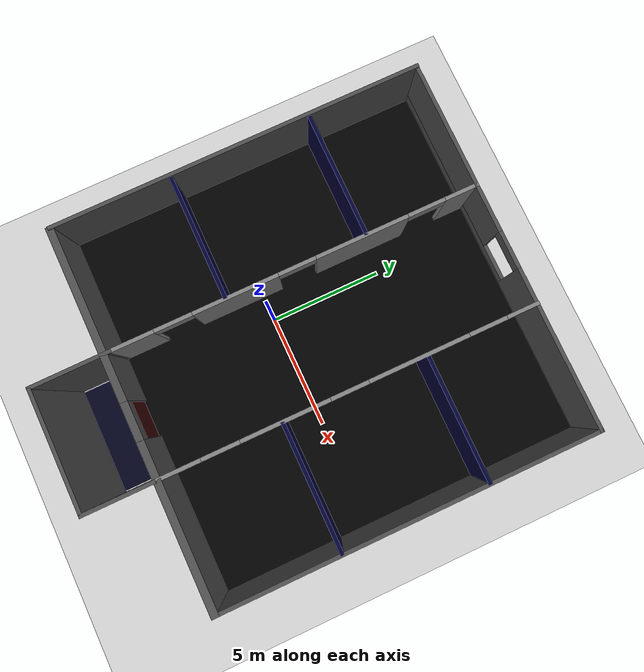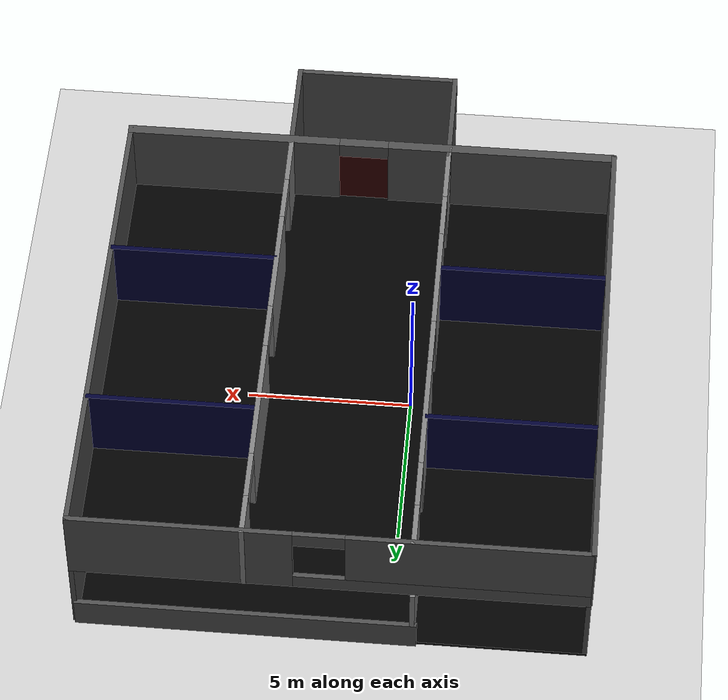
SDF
<sdf version="1.9">
 <world name="default">
  <physics type="ode">
   <max_step_size>0.004</max_step_size>
   <real_time_factor>1.0</real_time_factor>
   <real_time_update_rate>250</real_time_update_rate>
  </physics>
  <gravity>0 0 -9.8</gravity>
  <magnetic_field>6e-06 2.3e-05 -4.2e-05</magnetic_field>
  <atmosphere type="adiabatic"/>
  <scene>
   <grid>false</grid>
   <ambient>0.4 0.4 0.4 1</ambient>
   <background>0.7 0.7 0.7 1</background>
   <shadows>true</shadows>
  </scene>
  <model name="ground_plane">
   <static>true</static>
   <link name="link">
    <collision name="collision">
     <geometry><plane><normal>0 0 1</normal><size>1 1</size></plane></geometry>
    </collision>
    <visual name="visual">
     <geometry><plane><normal>0 0 1</normal><size>500 500</size></plane></geometry>
     <material>
      <ambient>0.8 0.8 0.8 1</ambient>
      <diffuse>0.8 0.8 0.8 1</diffuse>
      <specular>0.8 0.8 0.8 1</specular>
     </material>
    </visual>
    <inertial>
     <mass>1</mass>
     <inertia><ixx>1</ixx><ixy>0</ixy><ixz>0</ixz><iyy>1</iyy><iyz>0</iyz><izz>1</izz></inertia>
    </inertial>
   </link>
  </model>
  <light name="sunUTC" type="directional">
   <pose>0 0 500 0 -0 0</pose>
   <intensity>1</intensity>
   <direction>0.001 0.625 -0.78</direction>
   <diffuse>0.904 0.904 0.904 1</diffuse>
   <specular>0.271 0.271 0.271 1</specular>
   <attenuation><range>2000</range><linear>0</linear><constant>1</constant><quadratic>0</quadratic></attenuation>
   <spot><inner_angle>0</inner_angle><outer_angle>0</outer_angle><falloff>0</falloff></spot>
  </light>
  <spherical_coordinates>
   <surface_model>EARTH_WGS84</surface_model>
   <world_frame_orientation>ENU</world_frame_orientation>
   <latitude_deg>47.397971057728974</latitude_deg>
   <longitude_deg>8.546163739800146</longitude_deg>
   <elevation>0</elevation>
  </spherical_coordinates>
  <include><uri>model://elevator</uri><pose degrees="true">0 0 0.195 0 0 90</pose></include>
 </world>
</sdf>

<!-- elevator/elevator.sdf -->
<sdf version='1.7'>
  <model name='elevator'>
    <pose>-0 0 0 0 0 0</pose>
    <link name='floor_0'>
      <pose>1.39606 -1.72045 0.05 0 -0 0</pose>
      <inertial>
        <mass>1000</mass>
        <inertia>
          <ixx>10974.166666666666</ixx>
          <ixy>0</ixy>
          <ixz>0</ixz>
          <iyy>10854.166666666666</iyy>
          <iyz>0</iyz>
          <izz>546.6666666666667</izz>
        </inertia>
        <pose>0 0 3.2 0 0 0</pose>
      </inertial>
      <light type="directional" name="light_0">
        <pose>0 0 2.4 0 0 0</pose>
        <cast_shadows>false</cast_shadows>
        <diffuse>1 1 1 1</diffuse>
        <specular>.2 .2 .2 1</specular>
        <intensity>10</intensity>
        <attenuation>
          <range>200</range>
          <linear>0.2</linear>
          <constant>0.05</constant>
          <quadratic>0.01</quadratic>
        </attenuation>
        <direction>0 0 -1</direction>
        <visualize>false</visualize>
      </light>
      <visual name='Floor_0_Visual_0'>
        <pose>0 0 0.0 0 -0 0</pose>
        <geometry>
          <box>
            <size>15.0 15.0 0.1</size>
          </box>
        </geometry>
        <material>
          <ambient>0 0 0 1</ambient>
          <diffuse>0 0 0 1</diffuse>
          <emissive>0 0 0 1</emissive>
        </material>
        <meta>
          <layer>1</layer>
        </meta>
      </visual>

      <collision name='Floor_0_Collision_0'>
        <geometry>
          <box>
            <size>13.4446 15.0518 0.1</size>
          </box>
        </geometry>
        <pose>-0.79084 0 0.0 0 -0 0</pose>
      </collision>
      <collision name='Wall_1_0_Collision_0'>
        <geometry>
          <box>
            <size>10.5 0.15 2.5</size>
          </box>
        </geometry>
        <pose>-2.20 7.45391 1.25 0 -0 0</pose>
      </collision>
      <visual name='Wall_1_0_Visual_0'>
        <pose>-2.20 7.45391 1.25 0 -0 0</pose>
        <geometry>
          <box>
            <size>10.5 0.15 2.5</size>
          </box>
        </geometry>
        <material>
          <ambient>0.3 0.3 0.3 1</ambient>
          <diffuse>0.3 0.3 0.3 1</diffuse>
          <emissive>0.3 0.3 0.3 1</emissive>
        </material>
      </visual>
      <visual name='Wall_1_1_Visual_0'>
        <pose>0.0 7.45391 3.75 0 -0 0</pose>
        <geometry>
          <box>
            <size>15 0.15 2.5</size>
          </box>
        </geometry>
        <material>
          <ambient>0.3 0.3 0.3 1</ambient>
          <diffuse>0.3 0.3 0.3 1</diffuse>
          <emissive>0.3 0.3 0.3 1</emissive>
        </material>
      </visual>
      <collision name='Wall_1_1_Collision_0'>
        <geometry>
          <box>
            <size>15 0.15 2.5</size>
          </box>
        </geometry>
        <pose>0.0 7.45391 3.75 0 -0 0</pose>
      </collision>
    </link>

    <link name='floor_1'>
      <pose>1.39606 -1.72045 2.5 0 -0 0</pose>
      <inertial>
        <mass>1000</mass>
        <inertia>
          <ixx>10974.166666666666</ixx>
          <ixy>0</ixy>
          <ixz>0</ixz>
          <iyy>10854.166666666666</iyy>
          <iyz>0</iyz>
          <izz>546.6666666666667</izz>
        </inertia>
        <pose>0 0 3.2 0 0 0</pose>
      </inertial>
      <visual name='floor_1_Visual_0'>
        <pose>0 0 0.05 0 -0 0</pose>
        <geometry>
          <box>
            <size>15.0 15.0 0.1</size>
          </box>
        </geometry>
        <material>
          <ambient>0 0 0 1</ambient>
          <diffuse>0 0 0 1</diffuse>
          <emissive>0 0 0 1</emissive>
        </material>
        <meta>
          <layer>1</layer>
        </meta>
      </visual>
      <collision name='floor_1_Collision_0'>
        <geometry>
          <box>
            <size>13.4446 15.0518 0.1</size>
          </box>
        </geometry>
        <pose>-0.79084 0 0.05 0 -0 0</pose>
      </collision>
    </link>

    <link name='Wall_10'>
      <collision name='Wall_10_Collision'>
        <geometry>
          <box>
            <size>5 0.15 2.5</size>
          </box>
        </geometry>
        <pose>0 0 1.25 0 -0 0</pose>
      </collision>
      <visual name='Wall_10_Visual'>
        <pose>0 0 1.25 0 -0 0</pose>
        <geometry>
          <box>
            <size>5 0.15 2.5</size>
          </box>
        </geometry>
        <material>
          <ambient>0 0 0.2 1</ambient>
          <diffuse>0 0 0.2 1</diffuse>
          <emissive>0 0 0.2 1</emissive>
        </material>
        <meta>
          <layer>0</layer>
        </meta>
      </visual>
      <pose>-1.27212 3.17904 0 0 -0 -1.5708</pose>
    </link>
    <link name='Wall_14'>
      <collision name='Wall_14_Collision'>
        <geometry>
          <box>
            <size>5 0.15 2.5</size>
          </box>
        </geometry>
        <pose>0 0 1.25 0 -0 0</pose>
      </collision>
      <visual name='Wall_14_Visual'>
        <pose>0 0 1.25 0 -0 0</pose>
        <geometry>
          <box>
            <size>5 0.15 2.5</size>
          </box>
        </geometry>
        <material>
          <ambient>0 0 0.2 1</ambient>
          <diffuse>0 0 0.2 1</diffuse>
          <emissive>0 0 0.2 1</emissive>
        </material>
        <meta>
          <layer>0</layer>
        </meta>
      </visual>
      <pose>4.30707 3.16374 0 0 -0 -1.5708</pose>
    </link>
    <link name='Wall_16'>
      <collision name='Wall_16_Collision'>
        <geometry>
          <box>
            <size>5 0.15 2.5</size>
          </box>
        </geometry>
        <pose>0 0 1.25 0 -0 0</pose>
      </collision>
      <visual name='Wall_16_Visual'>
        <pose>0 0 1.25 0 -0 0</pose>
        <geometry>
          <box>
            <size>5 0.15 2.5</size>
          </box>
        </geometry>
        <material>
          <ambient>0 0 0.2 1</ambient>
          <diffuse>0 0 0.2 1</diffuse>
          <emissive>0 0 0.2 1</emissive>
        </material>
        <meta>
          <layer>0</layer>
        </meta>
      </visual>
      <pose>-1.23755 -6.6836 0 0 -0 -1.5708</pose>
    </link>
    <link name='Wall_18'>
      <pose>-0.84112 -4.18231 0 0 -0 0</pose>
      <visual name='Wall_18_Visual_0'>
        <pose>-4.7461 0 1.25 0 -0 0</pose>
        <geometry>
          <box>
            <size>1.00781 0.15 2.5</size>
          </box>
        </geometry>
        <material>
          <ambient>0.5 0.5 0.5 1</ambient>
          <diffuse>0.5 0.5 0.5 1</diffuse>
          <emissive>0.5 0.5 0.5 1</emissive>
        </material>
        <meta>
          <layer>0</layer>
        </meta>
      </visual>
      <collision name='Wall_18_Collision_0'>
        <geometry>
          <box>
            <size>1.00781 0.15 2.5</size>
          </box>
        </geometry>
        <pose>-4.7461 0 1.25 0 -0 0</pose>
      </collision>
      <visual name='Wall_18_Visual_1'>
        <pose>-0.660736 0 1.25 0 -0 0</pose>
        <geometry>
          <box>
            <size>4.16291 0.15 2.5</size>
          </box>
        </geometry>
        <material>
          <ambient>0.5 0.5 0.5 1</ambient>
          <diffuse>0.5 0.5 0.5 1</diffuse>
          <emissive>0.5 0.5 0.5 1</emissive>
        </material>
        <meta>
          <layer>0</layer>
        </meta>
      </visual>
      <collision name='Wall_18_Collision_1'>
        <geometry>
          <box>
            <size>4.16291 0.15 2.5</size>
          </box>
        </geometry>
        <pose>-0.660736 0 1.25 0 -0 0</pose>
      </collision>
      <visual name='Wall_18_Visual_2'>
        <pose>4.08536 0 1.25 0 -0 0</pose>
        <geometry>
          <box>
            <size>2.32928 0.15 2.5</size>
          </box>
        </geometry>
        <material>
          <ambient>0.5 0.5 0.5 1</ambient>
          <diffuse>0.5 0.5 0.5 1</diffuse>
          <emissive>0.5 0.5 0.5 1</emissive>
        </material>
        <meta>
          <layer>0</layer>
        </meta>
      </visual>
      <collision name='Wall_18_Collision_2'>
        <geometry>
          <box>
            <size>2.32928 0.15 2.5</size>
          </box>
        </geometry>
        <pose>4.08536 0 1.25 0 -0 0</pose>
      </collision>
      <visual name='Wall_18_Visual_3'>
        <pose>-3.49219 0 2.25 0 -0 0</pose>
        <geometry>
          <box>
            <size>1.5 0.15 0.5</size>
          </box>
        </geometry>
        <material>
          <ambient>0.5 0.5 0.5 1</ambient>
          <diffuse>0.5 0.5 0.5 1</diffuse>
          <emissive>0.5 0.5 0.5 1</emissive>
        </material>
        <meta>
          <layer>0</layer>
        </meta>
      </visual>
      <collision name='Wall_18_Collision_3'>
        <geometry>
          <box>
            <size>1.5 0.15 0.5</size>
          </box>
        </geometry>
        <pose>-3.49219 0 2.25 0 -0 0</pose>
      </collision>
      <visual name='Wall_18_Visual_4'>
        <pose>2.17072 0 2.25 0 -0 0</pose>
        <geometry>
          <box>
            <size>1.5 0.15 0.5</size>
          </box>
        </geometry>
        <material>
          <ambient>0.5 0.5 0.5 1</ambient>
          <diffuse>0.5 0.5 0.5 1</diffuse>
          <emissive>0.5 0.5 0.5 1</emissive>
        </material>
        <meta>
          <layer>0</layer>
        </meta>
      </visual>
      <collision name='Wall_18_Collision_4'>
        <geometry>
          <box>
            <size>1.5 0.15 0.5</size>
          </box>
        </geometry>
        <pose>2.17072 0 2.25 0 -0 0</pose>
      </collision>
    </link>

    <link name='Wall_23'>
      <collision name='Wall_23_Collision'>
        <geometry>
          <box>
            <size>5 0.15 2.5</size>
          </box>
        </geometry>
        <pose>0 0 1.25 0 -0 0</pose>
      </collision>
      <visual name='Wall_23_Visual'>
        <pose>0 0 1.25 0 -0 0</pose>
        <geometry>
          <box>
            <size>5 0.15 2.5</size>
          </box>
        </geometry>
        <material>
          <ambient>0 0 0.2 1</ambient>
          <diffuse>0 0 0.2 1</diffuse>
          <emissive>0 0 0.2 1</emissive>
        </material>
        <meta>
          <layer>0</layer>
        </meta>
      </visual>
      <pose>4.45931 -6.58722 0 0 -0 -1.5708</pose>
    </link>
    <link name='Wall_25'>
      <collision name='Wall_25_Collision'>
        <geometry>
          <box>
            <size>3.25102 0.15 5</size>
          </box>
        </geometry>
        <pose>0 0 2.5 0 -0 0</pose>
      </collision>
      <visual name='Wall_25_Visual'>
        <pose>0 0 2.5 0 -0 0</pose>
        <geometry>
          <box>
            <size>3.25102 0.15 5</size>
          </box>
        </geometry>
        <material>
          <diffuse>0.3 0.3 0.3 1</diffuse>
          <emissive>0.3 0.3 0.3 1</emissive>
          <ambient>0.3 0.3 0.3 1</ambient>
        </material>
        <meta>
          <layer>0</layer>
        </meta>
      </visual>
      <pose>-7.35633 0.666906 0 0 -0 -3.13837</pose>
    </link>
    <link name='Wall_26'>
      <collision name='Wall_26_Collision'>
        <geometry>
          <box>
            <size>5 0.15 5</size>
          </box>
        </geometry>
        <pose>0 0 2.5 0 -0 0</pose>
      </collision>
      <visual name='Wall_26_Visual'>
        <pose>0 0 2.5 0 -0 0</pose>
        <geometry>
          <box>
            <size>5 0.15 5</size>
          </box>
        </geometry>
        <material>
          <diffuse>0.3 0.3 0.3 1</diffuse>
          <emissive>0.3 0.3 0.3 1</emissive>
          <ambient>0.3 0.3 0.3 1</ambient>
        </material>
        <meta>
          <layer>0</layer>
        </meta>
      </visual>
      <pose>-8.90683 -1.76309 0 0 -0 -1.5708</pose>
    </link>
    <link name='Wall_27'>
      <collision name='Wall_27_Collision'>
        <geometry>
          <box>
            <size>3 0.15 5</size>
          </box>
        </geometry>
        <pose>0 0 2.5 0 -0 0</pose>
      </collision>
      <visual name='Wall_27_Visual'>
        <pose>0 0 2.5 0 -0 0</pose>
        <geometry>
          <box>
            <size>3 0.15 5</size>
          </box>
        </geometry>
        <material>
          <diffuse>0.3 0.3 0.3 1</diffuse>
          <emissive>0.3 0.3 0.3 1</emissive>
          <ambient>0.3 0.3 0.3 1</ambient>
        </material>
        <meta>
          <layer>0</layer>
        </meta>
      </visual>
      <pose>-7.48183 -4.18809 0 0 -0 0</pose>
    </link>
    <link name='Wall_4'>
      <pose>-6.04183 -1.72609 0 0 -0 -1.57</pose>
      <visual name='Wall_4_Visual_0'>
        <pose>-3.99915 0 1.25 0 -0 0</pose>
        <geometry>
          <box>
            <size>7.00169 0.3 2.5</size>
          </box>
        </geometry>
        <material>
          <ambient>0.3 0.3 0.3 1</ambient>
          <diffuse>0.3 0.3 0.3 1</diffuse>
          <emissive>0.3 0.3 0.3 1</emissive>
        </material>
        <meta>
          <layer>0</layer>
        </meta>
      </visual>
      <collision name='Wall_4_Collision_0'>
        <geometry>
          <box>
            <size>7.00169 0.3 2.5</size>
          </box>
        </geometry>
        <pose>-3.99915 0 1.3 0 -0 0</pose>
      </collision>
      <visual name='Wall_4_Visual_1'>
        <pose>4.25085 0 1.3 0 -0 0</pose>
        <geometry>
          <box>
            <size>6.49831 0.3 2.5</size>
          </box>
        </geometry>
        <material>
          <ambient>0.3 0.3 0.3 1</ambient>
          <diffuse>0.3 0.3 0.3 1</diffuse>
          <emissive>0.3 0.3 0.3 1</emissive>
        </material>
        <meta>
          <layer>0</layer>
        </meta>
      </visual>
      <collision name='Wall_4_Collision_1'>
        <geometry>
          <box>
            <size>6.49831 0.3 2.5</size>
          </box>
        </geometry>
        <pose>4.25085 0 1.25 0 -0 0</pose>
      </collision>
      <visual name='Wall_4_Visual_2'>
        <pose>0.251694 0 2.25 0 -0 0</pose>
        <geometry>
          <box>
            <size>1.5 0.3 0.5</size>
          </box>
        </geometry>
        <material>
          <ambient>0.3 0.3 0.3 1</ambient>
          <diffuse>0.3 0.3 0.3 1</diffuse>
          <emissive>0.3 0.3 0.3 1</emissive>
        </material>
        <meta>
          <layer>0</layer>
        </meta>
      </visual>
      <collision name='Wall_4_Collision_2'>
        <geometry>
          <box>
            <size>1.5 0.3 0.5</size>
          </box>
        </geometry>
        <pose>0.251694 0 2.25 0 -0 0</pose>
      </collision>
    </link>

    <link name='Wall_44'>
      <pose>-6.04183 -1.72609 2.5 0 -0 -1.57</pose>
      <visual name='Wall_44_Visual_0'>
        <pose>-4.02502 0 1.25 0 -0 0</pose>
        <geometry>
          <box>
            <size>7.00134 0.3 2.5</size>
          </box>
        </geometry>
        <material>
          <ambient>0.3 0.3 0.3 1</ambient>
          <diffuse>0.3 0.3 0.3 1</diffuse>
          <emissive>0.3 0.3 0.3 1</emissive>
        </material>
        <meta>
          <layer>1</layer>
        </meta>
      </visual>
      <collision name='Wall_44_Collision_0'>
        <geometry>
          <box>
            <size>7.00134 0.3 2.5</size>
          </box>
        </geometry>
        <pose>-4.02502 0 1.25 0 -0 0</pose>
      </collision>
      <visual name='Wall_44_Visual_1'>
        <pose>4.25085 0 1.25 0 -0 0</pose>
        <geometry>
          <box>
            <size>6.55004 0.3 2.5</size>
          </box>
        </geometry>
        <material>
          <ambient>0.3 0.3 0.3 1</ambient>
          <diffuse>0.3 0.3 0.3 1</diffuse>
          <emissive>0.3 0.3 0.3 1</emissive>
        </material>
        <meta>
          <layer>1</layer>
        </meta>
      </visual>
      <collision name='Wall_44_Collision_1'>
        <geometry>
          <box>
            <size>6.55004 0.3 2.5</size>
          </box>
        </geometry>
        <pose>4.25067 0 1.25 0 -0 0</pose>
      </collision>
      <visual name='Wall_44_Visual_2'>
        <pose>0.225654 0 2.25 0 -0 0</pose>
        <geometry>
          <box>
            <size>1.5 0.3 0.5</size>
          </box>
        </geometry>
        <material>
          <ambient>0.3 0.3 0.3 1</ambient>
          <diffuse>0.3 0.3 0.3 1</diffuse>
          <emissive>0.3 0.3 0.3 1</emissive>
        </material>
        <meta>
          <layer>1</layer>
        </meta>
      </visual>
      <collision name='Wall_44_Collision_2'>
        <geometry>
          <box>
            <size>1.5 0.3 0.5</size>
          </box>
        </geometry>
        <pose>0.225654 0 2.25 0 -0 0</pose>
      </collision>
    </link>
    <link name='Wall_45'>
      <collision name='Wall_45_Collision'>
        <geometry>
          <box>
            <size>15.015 0.15 2.5</size>
          </box>
        </geometry>
        <pose>0 0 1.25 0 -0 0</pose>
      </collision>
      <visual name='Wall_45_Visual'>
        <pose>0 0 1.25 0 -0 0</pose>
        <geometry>
          <box>
            <size>15.015 0.15 2.5</size>
          </box>
        </geometry>
        <material>
          <ambient>0.3 0.3 0.3 1</ambient>
          <diffuse>0.3 0.3 0.3 1</diffuse>
          <emissive>0.3 0.3 0.3 1</emissive>
        </material>
        <meta>
          <layer>1</layer>
        </meta>
      </visual>
      <pose>1.39067 -9.17109 2.5 0 -0 0</pose>
    </link>
    <link name='Wall_46'>
      <pose>1.39488 0.671906 2.5 0 -0 0</pose>
      <visual name='Wall_46_Visual_0'>
        <pose>-6.49103 0 1.25 0 -0 0</pose>
        <geometry>
          <box>
            <size>2.01794 0.15 2.5</size>
          </box>
        </geometry>
        <material>
          <ambient>0.5 0.5 0.5 1</ambient>
          <diffuse>0.5 0.5 0.5 1</diffuse>
          <emissive>0.5 0.5 0.5 1</emissive>
        </material>
        <meta>
          <layer>1</layer>
        </meta>
      </visual>
      <collision name='Wall_46_Collision_0'>
        <geometry>
          <box>
            <size>2.01794 0.15 2.5</size>
          </box>
        </geometry>
        <pose>-6.49103 0 1.25 0 -0 0</pose>
      </collision>
      <visual name='Wall_46_Visual_1'>
        <pose>-2.28116 0 1.25 0 -0 0</pose>
        <geometry>
          <box>
            <size>3.4018 0.15 2.5</size>
          </box>
        </geometry>
        <material>
          <ambient>0.5 0.5 0.5 1</ambient>
          <diffuse>0.5 0.5 0.5 1</diffuse>
          <emissive>0.5 0.5 0.5 1</emissive>
        </material>
        <meta>
          <layer>1</layer>
        </meta>
      </visual>
      <collision name='Wall_46_Collision_1'>
        <geometry>
          <box>
            <size>3.4018 0.15 2.5</size>
          </box>
        </geometry>
        <pose>-2.28116 0 1.25 0 -0 0</pose>
      </collision>
      <visual name='Wall_46_Visual_2'>
        <pose>2.77923 0 1.25 0 -0 0</pose>
        <geometry>
          <box>
            <size>3.71898 0.15 2.5</size>
          </box>
        </geometry>
        <material>
          <ambient>0.5 0.5 0.5 1</ambient>
          <diffuse>0.5 0.5 0.5 1</diffuse>
          <emissive>0.5 0.5 0.5 1</emissive>
        </material>
        <meta>
          <layer>1</layer>
        </meta>
      </visual>
      <collision name='Wall_46_Collision_2'>
        <geometry>
          <box>
            <size>3.71898 0.15 2.5</size>
          </box>
        </geometry>
        <pose>2.77923 0 1.25 0 -0 0</pose>
      </collision>
      <visual name='Wall_46_Visual_3'>
        <pose>6.81936 0 1.25 0 -0 0</pose>
        <geometry>
          <box>
            <size>1.36129 0.15 2.5</size>
          </box>
        </geometry>
        <material>
          <ambient>0.5 0.5 0.5 1</ambient>
          <diffuse>0.5 0.5 0.5 1</diffuse>
          <emissive>0.5 0.5 0.5 1</emissive>
        </material>
        <meta>
          <layer>1</layer>
        </meta>
      </visual>
      <collision name='Wall_46_Collision_3'>
        <geometry>
          <box>
            <size>1.36129 0.15 2.5</size>
          </box>
        </geometry>
        <pose>6.81936 0 1.25 0 -0 0</pose>
      </collision>
      <visual name='Wall_46_Visual_4'>
        <pose>-4.73206 0 2.25 0 -0 0</pose>
        <geometry>
          <box>
            <size>1.5 0.15 0.5</size>
          </box>
        </geometry>
        <material>
          <ambient>0.5 0.5 0.5 1</ambient>
          <diffuse>0.5 0.5 0.5 1</diffuse>
          <emissive>0.5 0.5 0.5 1</emissive>
        </material>
        <meta>
          <layer>1</layer>
        </meta>
      </visual>
      <collision name='Wall_46_Collision_4'>
        <geometry>
          <box>
            <size>1.5 0.15 0.5</size>
          </box>
        </geometry>
        <pose>-4.73206 0 2.25 0 -0 0</pose>
      </collision>
      <visual name='Wall_46_Visual_5'>
        <pose>0.169738 0 2.25 0 -0 0</pose>
        <geometry>
          <box>
            <size>1.5 0.15 0.5</size>
          </box>
        </geometry>
        <material>
          <ambient>0.5 0.5 0.5 1</ambient>
          <diffuse>0.5 0.5 0.5 1</diffuse>
          <emissive>0.5 0.5 0.5 1</emissive>
        </material>
        <meta>
          <layer>1</layer>
        </meta>
      </visual>
      <collision name='Wall_46_Collision_5'>
        <geometry>
          <box>
            <size>1.5 0.15 0.5</size>
          </box>
        </geometry>
        <pose>0.169738 0 2.25 0 -0 0</pose>
      </collision>
      <visual name='Wall_46_Visual_6'>
        <pose>5.38872 0 2.25 0 -0 0</pose>
        <geometry>
          <box>
            <size>1.5 0.15 0.5</size>
          </box>
        </geometry>
        <material>
          <ambient>0.5 0.5 0.5 1</ambient>
          <diffuse>0.5 0.5 0.5 1</diffuse>
          <emissive>0.5 0.5 0.5 1</emissive>
        </material>
        <meta>
          <layer>1</layer>
        </meta>
      </visual>
      <collision name='Wall_46_Collision_6'>
        <geometry>
          <box>
            <size>1.5 0.15 0.5</size>
          </box>
        </geometry>
        <pose>5.38872 0 2.25 0 -0 0</pose>
      </collision>
    </link>
    <link name='Wall_47'>
      <collision name='Wall_47_Collision'>
        <geometry>
          <box>
            <size>5 0.15 2.5</size>
          </box>
        </geometry>
        <pose>0 0 1.25 0 -0 0</pose>
      </collision>
      <visual name='Wall_47_Visual'>
        <pose>0 0 1.25 0 -0 0</pose>
        <geometry>
          <box>
            <size>5 0.15 2.5</size>
          </box>
        </geometry>
        <material>
          <ambient>0 0 0.2 1</ambient>
          <diffuse>0 0 0.2 1</diffuse>
          <emissive>0 0 0.2 1</emissive>
        </material>
        <meta>
          <layer>1</layer>
        </meta>
      </visual>
      <pose>-1.27212 3.17904 2.5 0 -0 -1.5708</pose>
    </link>
    <link name='Wall_49'>
      <collision name='Wall_49_Collision'>
        <geometry>
          <box>
            <size>5 0.15 2.5</size>
          </box>
        </geometry>
        <pose>0 0 1.25 0 -0 0</pose>
      </collision>
      <visual name='Wall_49_Visual'>
        <pose>0 0 1.25 0 -0 0</pose>
        <geometry>
          <box>
            <size>5 0.15 2.5</size>
          </box>
        </geometry>
        <material>
          <ambient>0 0 0.2 1</ambient>
          <diffuse>0 0 0.2 1</diffuse>
          <emissive>0 0 0.2 1</emissive>
        </material>
        <meta>
          <layer>1</layer>
        </meta>
      </visual>
      <pose>4.34511 3.17008 2.5 0 -0 -1.5708</pose>
    </link>
    <link name='Wall_50'>
      <collision name='Wall_50_Collision'>
        <geometry>
          <box>
            <size>5 0.15 2.5</size>
          </box>
        </geometry>
        <pose>0 0 1.25 0 -0 0</pose>
      </collision>
      <visual name='Wall_50_Visual'>
        <pose>0 0 1.25 0 -0 0</pose>
        <geometry>
          <box>
            <size>5 0.15 2.5</size>
          </box>
        </geometry>
        <material>
          <ambient>0 0 0.2 1</ambient>
          <diffuse>0 0 0.2 1</diffuse>
          <emissive>0 0 0.2 1</emissive>
        </material>
        <meta>
          <layer>1</layer>
        </meta>
      </visual>
      <pose>-1.23755 -6.6836 2.5 0 -0 -1.5708</pose>
    </link>
    <link name='Wall_51'>
      <pose>1.40917 -4.18659 2.5 0 -0 -0.000606</pose>
      <visual name='Wall_51_Visual_0'>
        <pose>-6.64233 0 1.25 0 -0 0</pose>
        <geometry>
          <box>
            <size>1.71534 0.15 2.5</size>
          </box>
        </geometry>
        <material>
          <ambient>0.5 0.5 0.5 1</ambient>
          <diffuse>0.5 0.5 0.5 1</diffuse>
          <emissive>0.5 0.5 0.5 1</emissive>
        </material>
        <meta>
          <layer>1</layer>
        </meta>
      </visual>
      <collision name='Wall_51_Collision_0'>
        <geometry>
          <box>
            <size>1.71534 0.15 2.5</size>
          </box>
        </geometry>
        <pose>-6.64233 0 1.25 0 -0 0</pose>
      </collision>
      <visual name='Wall_51_Visual_1'>
        <pose>-2.52611 0 1.25 0 -0 0</pose>
        <geometry>
          <box>
            <size>3.5171 0.15 2.5</size>
          </box>
        </geometry>
        <material>
          <ambient>0.5 0.5 0.5 1</ambient>
          <diffuse>0.5 0.5 0.5 1</diffuse>
          <emissive>0.5 0.5 0.5 1</emissive>
        </material>
        <meta>
          <layer>1</layer>
        </meta>
      </visual>
      <collision name='Wall_51_Collision_1'>
        <geometry>
          <box>
            <size>3.5171 0.15 2.5</size>
          </box>
        </geometry>
        <pose>-2.52611 0 1.25 0 -0 0</pose>
      </collision>
      <visual name='Wall_51_Visual_2'>
        <pose>2.72171 0 1.25 0 -0 0</pose>
        <geometry>
          <box>
            <size>3.97854 0.15 2.5</size>
          </box>
        </geometry>
        <material>
          <ambient>0.5 0.5 0.5 1</ambient>
          <diffuse>0.5 0.5 0.5 1</diffuse>
          <emissive>0.5 0.5 0.5 1</emissive>
        </material>
        <meta>
          <layer>1</layer>
        </meta>
      </visual>
      <collision name='Wall_51_Collision_2'>
        <geometry>
          <box>
            <size>3.97854 0.15 2.5</size>
          </box>
        </geometry>
        <pose>2.72171 0 1.25 0 -0 0</pose>
      </collision>
      <visual name='Wall_51_Visual_3'>
        <pose>6.85549 0 1.25 0 -0 0</pose>
        <geometry>
          <box>
            <size>1.28903 0.15 2.5</size>
          </box>
        </geometry>
        <material>
          <ambient>0.5 0.5 0.5 1</ambient>
          <diffuse>0.5 0.5 0.5 1</diffuse>
          <emissive>0.5 0.5 0.5 1</emissive>
        </material>
        <meta>
          <layer>1</layer>
        </meta>
      </visual>
      <collision name='Wall_51_Collision_3'>
        <geometry>
          <box>
            <size>1.28903 0.15 2.5</size>
          </box>
        </geometry>
        <pose>6.85549 0 1.25 0 -0 0</pose>
      </collision>
      <visual name='Wall_51_Visual_4'>
        <pose>-5.03466 0 2.25 0 -0 0</pose>
        <geometry>
          <box>
            <size>1.5 0.15 0.5</size>
          </box>
        </geometry>
        <material>
          <ambient>0.5 0.5 0.5 1</ambient>
          <diffuse>0.5 0.5 0.5 1</diffuse>
          <emissive>0.5 0.5 0.5 1</emissive>
        </material>
        <meta>
          <layer>1</layer>
        </meta>
      </visual>
      <collision name='Wall_51_Collision_4'>
        <geometry>
          <box>
            <size>1.5 0.15 0.5</size>
          </box>
        </geometry>
        <pose>-5.03466 0 2.25 0 -0 0</pose>
      </collision>
      <visual name='Wall_51_Visual_5'>
        <pose>-0.017562 0 2.25 0 -0 0</pose>
        <geometry>
          <box>
            <size>1.5 0.15 0.5</size>
          </box>
        </geometry>
        <material>
          <ambient>0.5 0.5 0.5 1</ambient>
          <diffuse>0.5 0.5 0.5 1</diffuse>
          <emissive>0.5 0.5 0.5 1</emissive>
        </material>
        <meta>
          <layer>1</layer>
        </meta>
      </visual>
      <collision name='Wall_51_Collision_5'>
        <geometry>
          <box>
            <size>1.5 0.15 0.5</size>
          </box>
        </geometry>
        <pose>-0.017562 0 2.25 0 -0 0</pose>
      </collision>
      <visual name='Wall_51_Visual_6'>
        <pose>5.46097 0 2.25 0 -0 0</pose>
        <geometry>
          <box>
            <size>1.5 0.15 0.5</size>
          </box>
        </geometry>
        <material>
          <ambient>0.5 0.5 0.5 1</ambient>
          <diffuse>0.5 0.5 0.5 1</diffuse>
          <emissive>0.5 0.5 0.5 1</emissive>
        </material>
        <meta>
          <layer>1</layer>
        </meta>
      </visual>
      <collision name='Wall_51_Collision_6'>
        <geometry>
          <box>
            <size>1.5 0.15 0.5</size>
          </box>
        </geometry>
        <pose>5.46097 0 2.25 0 -0 0</pose>
      </collision>
    </link>
    <link name='Wall_53'>
      <collision name='Wall_53_Collision'>
        <geometry>
          <box>
            <size>5 0.15 2.5</size>
          </box>
        </geometry>
        <pose>0 0 1.25 0 -0 0</pose>
      </collision>
      <visual name='Wall_53_Visual'>
        <pose>0 0 1.25 0 -0 0</pose>
        <geometry>
          <box>
            <size>5 0.15 2.5</size>
          </box>
        </geometry>
        <material>
          <ambient>0 0 0.2 1</ambient>
          <diffuse>0 0 0.2 1</diffuse>
          <emissive>0 0 0.2 1</emissive>
        </material>
        <meta>
          <layer>1</layer>
        </meta>
      </visual>
      <pose>4.44656 -6.68923 2.5 0 -0 -1.5708</pose>
    </link>

    <link name='Wall_6'>
      <collision name='Wall_6_Collision'>
        <geometry>
          <box>
            <size>15.0149 0.15 2.5</size>
          </box>
        </geometry>
        <pose>0 0 1.25 0 -0 0</pose>
      </collision>
      <visual name='Wall_6_Visual'>
        <pose>0 0 1.25 0 -0 0</pose>
        <geometry>
          <box>
            <size>15.0149 0.15 2.5</size>
          </box>
        </geometry>
        <material>
          <ambient>0.3 0.3 0.3 1</ambient>
          <diffuse>0.3 0.3 0.3 1</diffuse>
          <emissive>0.3 0.3 0.3 1</emissive>
        </material>
        <meta>
          <layer>0</layer>
        </meta>
      </visual>
      <pose>1.39067 -9.17109 0 0 -0 0</pose>
    </link>
    <link name='Wall_69'>
      <collision name='Wall_69_Collision'>
        <geometry>
          <box>
            <size>4.75 0.15 2.5</size>
          </box>
        </geometry>
        <pose>0 0 1.25 0 -0 0</pose>
      </collision>
      <visual name='Wall_69_Visual'>
        <pose>0 0 1.25 0 -0 0</pose>
        <geometry>
          <box>
            <size>4.75 0.15 2.5</size>
          </box>
        </geometry>
        <material>
          <ambient>0.5 0.5 0.5 1</ambient>
          <diffuse>0.5 0.5 0.5 1</diffuse>
          <emissive>0.5 0.5 0.5 1</emissive>
        </material>
        <meta>
          <layer>0</layer>
        </meta>
      </visual>
      <pose>6.60707 0.671906 0 0 -0 0</pose>
    </link>
    <link name='Wall_70'>
      <pose>8.90707 -4.18626 0 0 -0 -1.5708</pose>
      <visual name='Wall_70_Visual_0'>
        <pose>0 0 .5 0 -0 0</pose>
        <geometry>
          <box>
            <size>10 0.15 1</size>
          </box>
        </geometry>
        <material>
          <diffuse>0.3 0.3 0.3 1</diffuse>
          <emissive>0.3 0.3 0.3 1</emissive>
          <ambient>0.3 0.3 0.3 1</ambient>
        </material>
        <meta>
          <layer>0</layer>
        </meta>
      </visual>
      <collision name='Wall_70_Collision_0'>
        <geometry>
          <box>
            <size>10 0.15 1</size>
          </box>
        </geometry>
        <pose>-2.03566 0 .5 0 -0 0</pose>
      </collision>
    </link>
    <link name='Wall_72'>
      <pose>8.82317 -1.74609 2.5 0 -0 1.5708</pose>
      <visual name='Wall_72_Visual_0'>
        <pose>-4.25857 0 1.25 0 -0 0</pose>
        <geometry>
          <box>
            <size>6.48286 0.15 2.5</size>
          </box>
        </geometry>
        <material>
          <ambient>0.3 0.3 0.3 1</ambient>
          <diffuse>0.3 0.3 0.3 1</diffuse>
          <emissive>0.3 0.3 0.3 1</emissive>
        </material>
        <meta>
          <layer>1</layer>
        </meta>
      </visual>
      <collision name='Wall_72_Collision_0'>
        <geometry>
          <box>
            <size>6.48286 0.15 2.5</size>
          </box>
        </geometry>
        <pose>-4.25857 0 1.25 0 -0 0</pose>
      </collision>
      <visual name='Wall_72_Visual_1'>
        <pose>3.24143 0 0.25 0 -0 0</pose>
        <geometry>
          <box>
            <size>8.51714 0.15 0.5</size>
          </box>
        </geometry>
        <material>
          <ambient>0.3 0.3 0.3 1</ambient>
          <diffuse>0.3 0.3 0.3 1</diffuse>
          <emissive>0.3 0.3 0.3 1</emissive>
        </material>
        <meta>
          <layer>1</layer>
        </meta>
      </visual>
      <collision name='Wall_72_Collision_1'>
        <geometry>
          <box>
            <size>8.51714 0.15 0.5</size>
          </box>
        </geometry>
        <pose>3.24143 0 0.25 0 -0 0</pose>
      </collision>
      <visual name='Wall_72_Visual_2'>
        <pose>3.99143 0 1.5 0 -0 0</pose>
        <geometry>
          <box>
            <size>7.01714 0.15 2</size>
          </box>
        </geometry>
        <material>
          <ambient>0.3 0.3 0.3 1</ambient>
          <diffuse>0.3 0.3 0.3 1</diffuse>
          <emissive>0.3 0.3 0.3 1</emissive>
        </material>
        <meta>
          <layer>1</layer>
        </meta>
      </visual>
      <collision name='Wall_72_Collision_2'>
        <geometry>
          <box>
            <size>7.01714 0.15 2</size>
          </box>
        </geometry>
        <pose>3.99143 0 1.5 0 -0 0</pose>
      </collision>
      <visual name='Wall_72_Visual_3'>
        <pose>-0.267142 0 2.25 0 -0 0</pose>
        <geometry>
          <box>
            <size>1.5 0.15 0.5</size>
          </box>
        </geometry>
        <material>
          <ambient>0.3 0.3 0.3 1</ambient>
          <diffuse>0.3 0.3 0.3 1</diffuse>
          <emissive>0.3 0.3 0.3 1</emissive>
        </material>
        <meta>
          <layer>1</layer>
        </meta>
      </visual>
      <collision name='Wall_72_Collision_3'>
        <geometry>
          <box>
            <size>1.5 0.15 0.5</size>
          </box>
        </geometry>
        <pose>-0.267142 0 2.25 0 -0 0</pose>
      </collision>
    </link>

    <link name='Wall_77'>
      <collision name='Wall_77_Collision'>
        <geometry>
          <box>
            <size>0.25 0.15 2.5</size>
          </box>
        </geometry>
        <pose>0 0 1.25 0 -0 0</pose>
      </collision>
      <visual name='Wall_77_Visual'>
        <pose>0 0 1.25 0 -0 0</pose>
        <geometry>
          <box>
            <size>0.25 0.15 2.5</size>
          </box>
        </geometry>
        <material>
          <ambient>0.3 0.3 0.3 1</ambient>
          <diffuse>0.3 0.3 0.3 1</diffuse>
          <emissive>0.3 0.3 0.3 1</emissive>
        </material>
        <meta>
          <layer>0</layer>
        </meta>
      </visual>
      <pose>8.76434 5.71056 0 0 -0 0</pose>
    </link>
    <link name='Wall_8'>
      <pose>-0.755829 0.671906 0 0 -0 0</pose>
      <visual name='Wall_8_Visual_0'>
        <pose>-4.60506 0 1.25 0 -0 0</pose>
        <geometry>
          <box>
            <size>1.03988 0.15 2.5</size>
          </box>
        </geometry>
        <material>
          <ambient>0.5 0.5 0.5 1</ambient>
          <diffuse>0.5 0.5 0.5 1</diffuse>
          <emissive>0.5 0.5 0.5 1</emissive>
        </material>
        <meta>
          <layer>0</layer>
        </meta>
      </visual>
      <collision name='Wall_8_Collision_0'>
        <geometry>
          <box>
            <size>1.03988 0.15 2.5</size>
          </box>
        </geometry>
        <pose>-4.60506 0 1.25 0 -0 0</pose>
      </collision>
      <visual name='Wall_8_Visual_1'>
        <pose>-0.291668 0 1.25 0 -0 0</pose>
        <geometry>
          <box>
            <size>4.58691 0.15 2.5</size>
          </box>
        </geometry>
        <material>
          <ambient>0.5 0.5 0.5 1</ambient>
          <diffuse>0.5 0.5 0.5 1</diffuse>
          <emissive>0.5 0.5 0.5 1</emissive>
        </material>
        <meta>
          <layer>0</layer>
        </meta>
      </visual>
      <collision name='Wall_8_Collision_1'>
        <geometry>
          <box>
            <size>4.58691 0.15 2.5</size>
          </box>
        </geometry>
        <pose>-0.291668 0 1.25 0 -0 0</pose>
      </collision>
      <visual name='Wall_8_Visual_2'>
        <pose>4.31339 0 1.25 0 -0 0</pose>
        <geometry>
          <box>
            <size>1.62321 0.15 2.5</size>
          </box>
        </geometry>
        <material>
          <ambient>0.5 0.5 0.5 1</ambient>
          <diffuse>0.5 0.5 0.5 1</diffuse>
          <emissive>0.5 0.5 0.5 1</emissive>
        </material>
        <meta>
          <layer>0</layer>
        </meta>
      </visual>
      <collision name='Wall_8_Collision_2'>
        <geometry>
          <box>
            <size>1.62321 0.15 2.5</size>
          </box>
        </geometry>
        <pose>4.31339 0 1.25 0 -0 0</pose>
      </collision>
      <visual name='Wall_8_Visual_3'>
        <pose>-3.33513 0 2.25 0 -0 0</pose>
        <geometry>
          <box>
            <size>1.5 0.15 0.5</size>
          </box>
        </geometry>
        <material>
          <ambient>0.5 0.5 0.5 1</ambient>
          <diffuse>0.5 0.5 0.5 1</diffuse>
          <emissive>0.5 0.5 0.5 1</emissive>
        </material>
        <meta>
          <layer>0</layer>
        </meta>
      </visual>
      <collision name='Wall_8_Collision_3'>
        <geometry>
          <box>
            <size>1.5 0.15 0.5</size>
          </box>
        </geometry>
        <pose>-3.33513 0 2.25 0 -0 0</pose>
      </collision>
      <visual name='Wall_8_Visual_4'>
        <pose>2.75179 0 2.25 0 -0 0</pose>
        <geometry>
          <box>
            <size>1.5 0.15 0.5</size>
          </box>
        </geometry>
        <material>
          <ambient>0.5 0.5 0.5 1</ambient>
          <diffuse>0.5 0.5 0.5 1</diffuse>
          <emissive>0.5 0.5 0.5 1</emissive>
        </material>
        <meta>
          <layer>0</layer>
        </meta>
      </visual>
      <collision name='Wall_8_Collision_4'>
        <geometry>
          <box>
            <size>1.5 0.15 0.5</size>
          </box>
        </geometry>
        <pose>2.75179 0 2.25 0 -0 0</pose>
      </collision>
    </link>

    <joint name="foundation" type="fixed">
      <parent>world</parent>
      <child>floor_0</child>
    </joint>
    <joint name="floor_1_joint" type="fixed">
      <parent>floor_0</parent>
      <child>floor_1</child>
    </joint>
    <joint name="Wall_10joint" type="fixed">
      <parent>floor_0</parent>
      <child>Wall_10</child>
    </joint>
    <joint name="Wall_14_joint" type="fixed">
      <parent>floor_0</parent>
      <child>Wall_14</child>
    </joint>
    <joint name="Wall_16_joint" type="fixed">
      <parent>floor_0</parent>
      <child>Wall_16</child>
    </joint>
    <joint name="Wall_18_joint" type="fixed">
      <parent>floor_0</parent>
      <child>Wall_18</child>
    </joint>
    <joint name="Wall_23_joint" type="fixed">
      <parent>floor_0</parent>
      <child>Wall_23</child>
    </joint>
    <joint name="Wall_25_joint" type="fixed">
      <parent>floor_0</parent>
      <child>Wall_25</child>
    </joint>
    <joint name="Wall_26_joint" type="fixed">
      <parent>floor_0</parent>
      <child>Wall_26</child>
    </joint>
    <joint name="Wall_27_joint" type="fixed">
      <parent>floor_0</parent>
      <child>Wall_27</child>
    </joint>
    <joint name="Wall_4_joint" type="fixed">
      <parent>floor_0</parent>
      <child>Wall_4</child>
    </joint>
    <joint name="Wall_44_joint" type="fixed">
      <parent>floor_0</parent>
      <child>Wall_44</child>
    </joint>
    <joint name="Wall_46_joint" type="fixed">
      <parent>floor_0</parent>
      <child>Wall_46</child>
    </joint>
    <joint name="Wall_47_joint" type="fixed">
      <parent>floor_0</parent>
      <child>Wall_47</child>
    </joint>
    <joint name="Wall_49_joint" type="fixed">
      <parent>floor_0</parent>
      <child>Wall_49</child>
    </joint>
    <joint name="Wall_50_joint" type="fixed">
      <parent>floor_0</parent>
      <child>Wall_50</child>
    </joint>
    <joint name="Wall_51_joint" type="fixed">
      <parent>floor_0</parent>
      <child>Wall_51</child>
    </joint>
    <joint name="Wall_53_joint" type="fixed">
      <parent>floor_0</parent>
      <child>Wall_53</child>
    </joint>
    <joint name="Wall_6_joint" type="fixed">
      <parent>floor_0</parent>
      <child>Wall_6</child>
    </joint>
    <joint name="Wall_69_joint" type="fixed">
      <parent>floor_0</parent>
      <child>Wall_69</child>
    </joint>
    <joint name="Wall_72_joint" type="fixed">
      <parent>floor_0</parent>
      <child>Wall_72</child>
    </joint>
    <joint name="Wall_77_joint" type="fixed">
      <parent>floor_0</parent>
      <child>Wall_77</child>
    </joint>
    <joint name="Wall_8_joint" type="fixed">
      <parent>floor_0</parent>
      <child>Wall_8</child>
    </joint>
    <joint name="Wall_45_joint" type="fixed">
      <parent>floor_0</parent>
      <child>Wall_45</child>
    </joint>
    <joint name="Wall_70_joint" type="fixed">
      <parent>floor_0</parent>
      <child>Wall_70</child>
    </joint>

    <link name='door_panel_0'>
      <pose>-6.03203 -1.98752 1 0 -0 -1.5708</pose>
      <inertial>
        <mass>20</mass>
        <inertia>
          <ixx>9.933333333333334</ixx>
          <ixy>0</ixy>
          <ixz>0</ixz>
          <iyy>6.683333333333333</iyy>
          <iyz>0</iyz>
          <izz>3.2833333333333328</izz>
        </inertia>
        <pose>0 0 0 0 0 0</pose>
      </inertial>
      <collision name='door_panel_0_Collision'>
        <geometry>
          <box>
            <size>0.15 0.15 2</size>
          </box>
        </geometry>
      </collision>
      <visual name='door_panel_0_Visual'>
        <geometry>
          <box>
            <size>1.5 0.15 2</size>
          </box>
        </geometry>
        <material>
          <ambient>0.2 0 0 1</ambient>
          <diffuse>0.2 0 0 1</diffuse>
          <emissive>0.2 0 0  1</emissive>
        </material>
      </visual>
    </link>

    <joint name="door_0" type="prismatic">
      <parent>floor_0</parent>
      <child>door_panel_0</child>
      <axis>
        <xyz>-1 0 0</xyz>
        <limit>
          <lower>0</lower>
          <upper>1.5</upper>
          <effort>5000</effort>
          <velocity>0.1</velocity>
        </limit>
        <dynamics>
          <damping>30</damping>
        </dynamics>
      </axis>
    </joint>
    <plugin filename="gz-sim-joint-position-controller-system" name="gz::sim::systems::JointPositionController">
      <joint_name>door_0</joint_name>
      <p_gain>60</p_gain>
      <i_gain>0</i_gain>
      <d_gain>40</d_gain>
      <cmd_min>-20</cmd_min>
      <cmd_max>20</cmd_max>
    </plugin>

    <link name='door_panel_1'>
      <pose>-6.03203 -1.95752 3.5 0 -0 -1.5708</pose>
      <inertial>
        <mass>20</mass>
        <inertia>
          <ixx>9.933333333333334</ixx>
          <ixy>0</ixy>
          <ixz>0</ixz>
          <iyy>6.683333333333333</iyy>
          <iyz>0</iyz>
          <izz>3.2833333333333328</izz>
        </inertia>
        <pose>0 0 0 0 0 0</pose>
      </inertial>
      <collision name='door_panel_1_collision'>
        <geometry>
          <box>
            <size>1.5 0.15 2</size>
          </box>
        </geometry>
      </collision>
      <visual name='door_panel_1_Visual'>
        <geometry>
          <box>
            <size>1.5 0.15 2</size>
          </box>
        </geometry>
        <material>
          <ambient>0.2 0 0 1</ambient>
          <diffuse>0.2 0 0 1</diffuse>
          <emissive>0.2 0 0  1</emissive>
        </material>
      </visual>
    </link>

    <joint name="door_1" type="prismatic">
      <parent>floor_0</parent>
      <child>door_panel_1</child>
      <axis>
        <xyz>-1 0 0</xyz>
        <limit>
          <lower>0</lower>
          <upper>1.5</upper>
          <effort>5000</effort>
          <velocity>0.1</velocity>
        </limit>
        <dynamics>
          <damping>30</damping>
        </dynamics>
      </axis>
    </joint>
    <plugin filename="gz-sim-joint-position-controller-system" name="gz::sim::systems::JointPositionController">
      <joint_name>door_1</joint_name>
      <p_gain>60</p_gain>
      <i_gain>0</i_gain>
      <d_gain>40</d_gain>
      <cmd_min>-20</cmd_min>
      <cmd_max>20</cmd_max>
    </plugin>

    <link name='cabin'>
      <pose>-7.50683 -1.76309 0 0 -0 0</pose>
      <inertial>
        <mass>200</mass>
        <inertia>
          <ixx>147.33333333333334</ixx>
          <ixy>0</ixy>
          <ixz>0</ixz>
          <iyy>123.33333333333336</iyy>
          <iyz>0</iyz>
          <izz>109.33333333333333</izz>
        </inertia>
        <pose>0 0 1.1 0 0 0</pose>
      </inertial>
      <visual name='cabin_Visual_0'>
        <geometry>
          <box>
            <size>2.8 4.6 0.1</size>
          </box>
        </geometry>
        <material>
          <ambient>0 0 .1 1</ambient>
          <diffuse>0 0 .1 1</diffuse>
          <emissive>0 0 .1  1</emissive>
        </material>
      </visual>
      <collision name='cabin_Collision_0'>
        <geometry>
          <box>
            <size>2.8 4.6 0.1</size>
          </box>
        </geometry>
      </collision>
    </link>
    <joint name="lift" type="prismatic">
      <parent>floor_0</parent>
      <child>cabin</child>
      <axis>
        <xyz>0 0 1</xyz>
        <limit>
          <lower>0</lower>
          <upper>2.55</upper>
          <effort>50000000</effort>
          <velocity>0.5</velocity>
        </limit>
        <dynamics>
          <damping>180000</damping>
        </dynamics>
      </axis>
    </joint>
    <plugin filename="gz-sim-joint-position-controller-system" name="gz::sim::systems::JointPositionController">
      <joint_name>lift</joint_name>
      <p_gain>4000000</p_gain>
      <i_gain>2000</i_gain>
      <d_gain>5000</d_gain>
      <i_min>-2000</i_min>
      <i_max>2000</i_max>
      <cmd_min>-80000</cmd_min>
      <cmd_max>120000</cmd_max>
    </plugin>

    <plugin filename="ignition-gazebo-elevator-system" name="ignition::gazebo::systems::Elevator">
    </plugin>

  </model>
</sdf>
